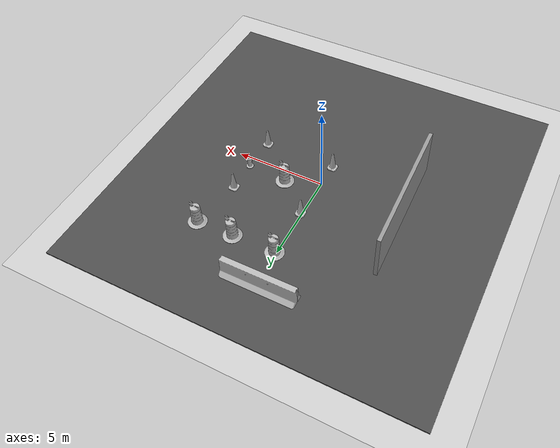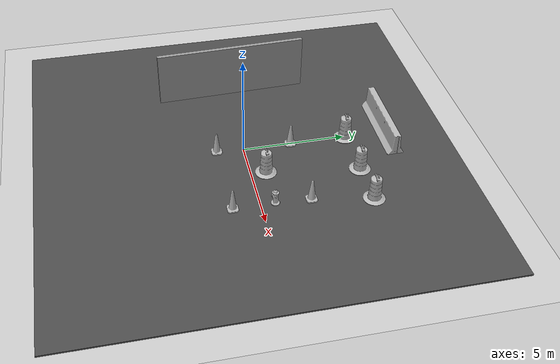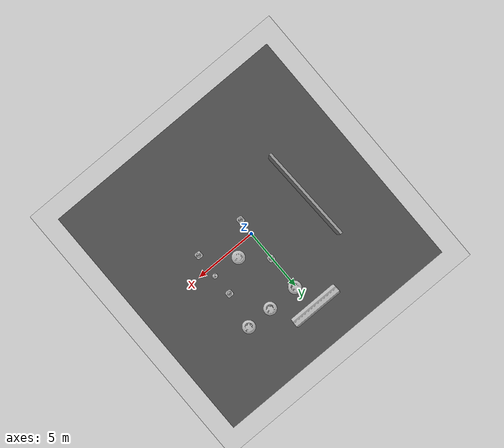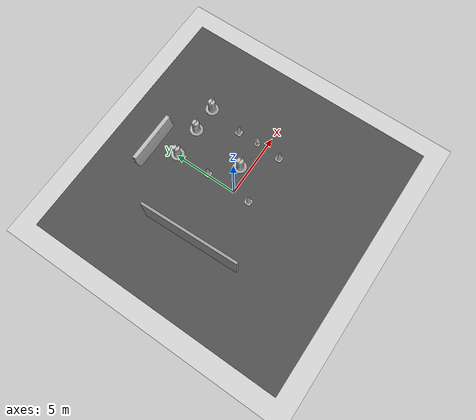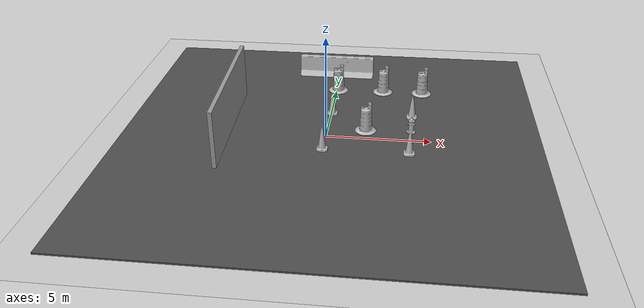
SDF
<sdf version="1.7">
 <world name="default">
  <light name="sun" type="directional">
   <pose>0 0 10 0 -0 0</pose>
   <diffuse>0.8 0.8 0.8 1</diffuse>
   <specular>0.2 0.2 0.2 1</specular>
   <attenuation>
    <range>1000</range>
    <constant>0.9</constant>
    <linear>0.01</linear>
    <quadratic>0.001</quadratic>
   </attenuation>
   <direction>-0.5 0.1 -0.9</direction>
   <spot><inner_angle>0</inner_angle><outer_angle>0</outer_angle><falloff>0</falloff></spot>
  </light>
  <model name="ground_plane">
   <static>1</static>
   <link name="link">
    <collision name="collision">
     <geometry><plane><normal>0 0 1</normal><size>100 100</size></plane></geometry>
     <surface>
      <contact><collide_bitmask>65535</collide_bitmask></contact>
      <friction><ode><mu>100</mu><mu2>50</mu2></ode></friction>
     </surface>
    </collision>
    <visual name="visual">
     <cast_shadows>0</cast_shadows>
     <geometry><plane><normal>0 0 1</normal><size>100 100</size></plane></geometry>
     <material>
      <script><uri>file://media/materials/scripts/gazebo.material</uri><name>Gazebo/Grey</name></script>
     </material>
    </visual>
   </link>
  </model>
  <gravity>0 0 -9.8</gravity>
  <magnetic_field>6e-06 2.3e-05 -4.2e-05</magnetic_field>
  <atmosphere type="adiabatic"/>
  <physics type="ode">
   <max_step_size>0.001</max_step_size>
   <real_time_factor>1</real_time_factor>
   <real_time_update_rate>1000</real_time_update_rate>
  </physics>
  <scene><ambient>0.4 0.4 0.4 1</ambient><background>0.7 0.7 0.7 1</background><shadows>1</shadows></scene>
  <audio><device>default</device></audio>
  <spherical_coordinates>
   <surface_model>EARTH_WGS84</surface_model>
   <latitude_deg>0</latitude_deg>
   <longitude_deg>0</longitude_deg>
   <elevation>0</elevation>
   <heading_deg>0</heading_deg>
  </spherical_coordinates>
  <model name="Construction Cone">
   <link name="link">
    <collision name="collision">
     <geometry>
      <mesh><scale>10 10 10</scale><uri>model://construction_cone/meshes/construction_cone.dae</uri></mesh>
     </geometry>
    </collision>
    <visual name="visual">
     <geometry>
      <mesh><scale>10 10 10</scale><uri>model://construction_cone/meshes/construction_cone.dae</uri></mesh>
     </geometry>
    </visual>
    <inertial>
     <inertia><ixx>1</ixx><ixy>0</ixy><ixz>0</ixz><iyy>1</iyy><iyz>0</iyz><izz>1</izz></inertia>
     <mass>1</mass>
    </inertial>
   </link>
   <pose>0.069583 2.31008 0.05 -2e-06 1e-06 -0</pose>
  </model>
  <model name="Construction Cone_0">
   <link name="link">
    <collision name="collision">
     <geometry>
      <mesh><scale>10 10 10</scale><uri>model://construction_cone/meshes/construction_cone.dae</uri></mesh>
     </geometry>
    </collision>
    <visual name="visual">
     <geometry>
      <mesh><scale>10 10 10</scale><uri>model://construction_cone/meshes/construction_cone.dae</uri></mesh>
     </geometry>
    </visual>
    <inertial>
     <inertia><ixx>1</ixx><ixy>0</ixy><ixz>0</ixz><iyy>1</iyy><iyz>0</iyz><izz>1</izz></inertia>
     <mass>1</mass>
    </inertial>
   </link>
   <pose>-0.031145 -1.29224 0.049999 1e-06 -2e-06 -0</pose>
  </model>
  <model name="Construction Barrel">
   <link name="link">
    <inertial>
     <pose>0 0 0.4 0 -0 0</pose>
     <mass>500</mass>
     <inertia><ixx>51.2096</ixx><iyy>51.2096</iyy><izz>25</izz><ixy>0</ixy><ixz>0</ixz><iyz>0</iyz></inertia>
    </inertial>
    <collision name="collision">
     <geometry><mesh><uri>model://construction_barrel/meshes/construction_barrel.dae</uri></mesh></geometry>
    </collision>
    <visual name="visual">
     <geometry><mesh><uri>model://construction_barrel/meshes/construction_barrel.dae</uri></mesh></geometry>
    </visual>
   </link>
   <pose>1.85354 0.708433 0.049999 -1e-06 -2e-06 5.2e-05</pose>
  </model>
  <model name="Construction Cone_1">
   <link name="link">
    <collision name="collision">
     <geometry>
      <mesh><scale>10 10 10</scale><uri>model://construction_cone/meshes/construction_cone.dae</uri></mesh>
     </geometry>
    </collision>
    <visual name="visual">
     <geometry>
      <mesh><scale>10 10 10</scale><uri>model://construction_cone/meshes/construction_cone.dae</uri></mesh>
     </geometry>
    </visual>
    <inertial>
     <inertia><ixx>1</ixx><ixy>0</ixy><ixz>0</ixz><iyy>1</iyy><iyz>0</iyz><izz>1</izz></inertia>
     <mass>1</mass>
    </inertial>
   </link>
   <pose>3.98052 -1.28367 0.049992 1e-06 -0 0</pose>
  </model>
  <model name="Construction Cone_2">
   <link name="link">
    <collision name="collision">
     <geometry>
      <mesh><scale>10 10 10</scale><uri>model://construction_cone/meshes/construction_cone.dae</uri></mesh>
     </geometry>
    </collision>
    <visual name="visual">
     <geometry>
      <mesh><scale>10 10 10</scale><uri>model://construction_cone/meshes/construction_cone.dae</uri></mesh>
     </geometry>
    </visual>
    <inertial>
     <inertia><ixx>1</ixx><ixy>0</ixy><ixz>0</ixz><iyy>1</iyy><iyz>0</iyz><izz>1</izz></inertia>
     <mass>1</mass>
    </inertial>
   </link>
   <pose>4.06132 2.31087 0.05 -2e-06 -1e-06 0</pose>
  </model>
  <model name="fire_hydrant">
   <static>1</static>
   <link name="link">
    <collision name="collision">
     <geometry><mesh><uri>model://fire_hydrant/meshes/fire_hydrant.dae</uri></mesh></geometry>
    </collision>
    <visual name="visual">
     <geometry><mesh><uri>model://fire_hydrant/meshes/fire_hydrant.dae</uri></mesh></geometry>
    </visual>
   </link>
   <pose>4.03994 0.646668 0 0 -0 0</pose>
  </model>
  <model name="Construction Barrel_0">
   <link name="link">
    <inertial>
     <pose>0 0 0.4 0 -0 0</pose>
     <mass>500</mass>
     <inertia><ixx>51.2096</ixx><iyy>51.2096</iyy><izz>25</izz><ixy>0</ixy><ixz>0</ixz><iyz>0</iyz></inertia>
    </inertial>
    <collision name="collision">
     <geometry><mesh><uri>model://construction_barrel/meshes/construction_barrel.dae</uri></mesh></geometry>
    </collision>
    <visual name="visual">
     <geometry><mesh><uri>model://construction_barrel/meshes/construction_barrel.dae</uri></mesh></geometry>
    </visual>
   </link>
   <pose>0.101109 5.04787 0.049999 -1e-06 -2e-06 5e-05</pose>
  </model>
  <model name="Construction Barrel_1">
   <link name="link">
    <inertial>
     <pose>0 0 0.4 0 -0 0</pose>
     <mass>500</mass>
     <inertia><ixx>51.2096</ixx><iyy>51.2096</iyy><izz>25</izz><ixy>0</ixy><ixz>0</ixz><iyz>0</iyz></inertia>
    </inertial>
    <collision name="collision">
     <geometry><mesh><uri>model://construction_barrel/meshes/construction_barrel.dae</uri></mesh></geometry>
    </collision>
    <visual name="visual">
     <geometry><mesh><uri>model://construction_barrel/meshes/construction_barrel.dae</uri></mesh></geometry>
    </visual>
   </link>
   <pose>2.48861 5.0726 0.049999 3e-06 -0 4.9e-05</pose>
  </model>
  <model name="Construction Barrel_2">
   <link name="link">
    <inertial>
     <pose>0 0 0.4 0 -0 0</pose>
     <mass>500</mass>
     <inertia><ixx>51.2096</ixx><iyy>51.2096</iyy><izz>25</izz><ixy>0</ixy><ixz>0</ixz><iyz>0</iyz></inertia>
    </inertial>
    <collision name="collision">
     <geometry><mesh><uri>model://construction_barrel/meshes/construction_barrel.dae</uri></mesh></geometry>
    </collision>
    <visual name="visual">
     <geometry><mesh><uri>model://construction_barrel/meshes/construction_barrel.dae</uri></mesh></geometry>
    </visual>
   </link>
   <pose>4.54836 5.09673 0.049999 -1e-06 -3e-06 5e-05</pose>
  </model>
  <model name="asphalt_plane">
   <static>1</static>
   <link name="link">
    <collision name="collision"><geometry><box><size>20 20 0.1</size></box></geometry></collision>
    <visual name="visual">
     <cast_shadows>0</cast_shadows>
     <geometry><box><size>20 20 0.1</size></box></geometry>
     <material>
      <script>
       <uri>model://asphalt_plane/materials/scripts</uri>
       <uri>model://asphalt_plane/materials/textures</uri>
       <name>vrc/asphalt</name>
      </script>
     </material>
    </visual>
   </link>
   <pose>0.173904 0.046388 0 0 -0 0</pose>
  </model>
  <model name="grey_wall">
   <static>1</static>
   <link name="link">
    <pose>0 0 1.4 0 -0 0</pose>
    <collision name="collision"><geometry><box><size>7.5 0.2 2.8</size></box></geometry></collision>
    <visual name="visual">
     <cast_shadows>0</cast_shadows>
     <geometry><box><size>7.5 0.2 2.8</size></box></geometry>
     <material>
      <script>
       <uri>model://grey_wall/materials/scripts</uri>
       <uri>model://grey_wall/materials/textures</uri>
       <name>vrc/grey_wall</name>
      </script>
     </material>
    </visual>
   </link>
   <pose>-4.71178 0.304608 0 0 -0 1.60394</pose>
  </model>
  <model name="jersey_barrier">
   <static>1</static>
   <link name="link">
    <visual name="visual">
     <geometry><mesh><uri>model://jersey_barrier/meshes/jersey_barrier.dae</uri></mesh></geometry>
    </visual>
    <collision name="upright">
     <pose>0 0 0.5715 0 -0 0</pose>
     <geometry><box><size>4.06542 0.3063 1.143</size></box></geometry>
    </collision>
    <collision name="base">
     <pose>0 0 0.032258 0 -0 0</pose>
     <geometry><box><size>4.06542 0.8107 0.064516</size></box></geometry>
    </collision>
    <collision name="base2">
     <pose>0 0 0.1 0 -0 0</pose>
     <geometry><box><size>4.06542 0.65 0.1</size></box></geometry>
    </collision>
    <collision name="base3">
     <pose>0 0 0.2 0 -0 0</pose>
     <geometry><box><size>4.06542 0.5 0.1</size></box></geometry>
    </collision>
    <collision name="left-angle">
     <pose>0 -0.224 0.2401 0.9 -0 0</pose>
     <geometry><box><size>4.06542 0.5 0.064516</size></box></geometry>
    </collision>
    <collision name="right-angle">
     <pose>0 0.224 0.2401 -0.9 0 0</pose>
     <geometry><box><size>4.06542 0.5 0.064516</size></box></geometry>
    </collision>
   </link>
   <pose>-0.18458 7.07394 0 0 -0 0</pose>
  </model>
 </world>
</sdf>
